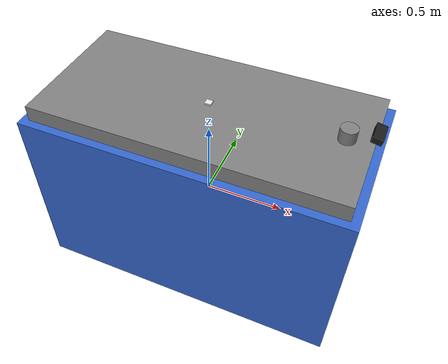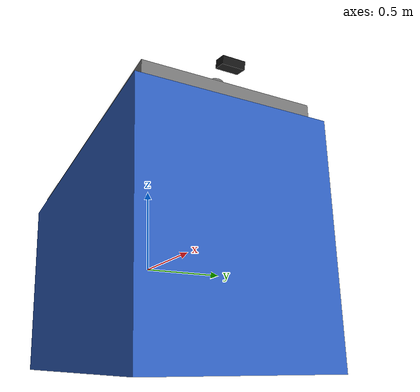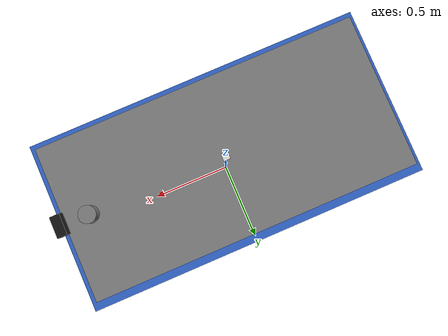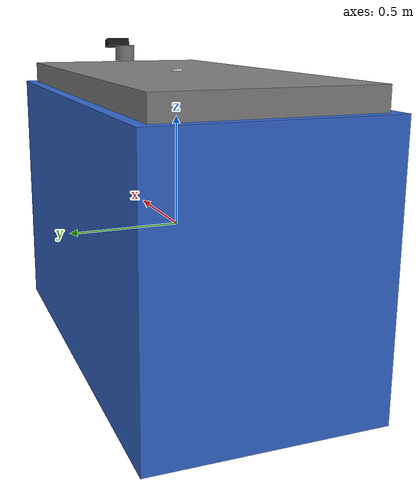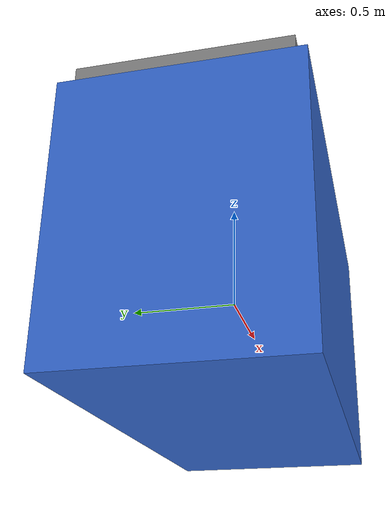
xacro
<?xml version="1.0"?>
<robot name="agv_robot" xmlns:xacro="http://www.ros.org/wiki/xacro">

  <!-- Constants -->
  <xacro:property name="vehicle_length" value="2.0"/>
  <xacro:property name="vehicle_width" value="1.0"/>
  <xacro:property name="vehicle_height" value="1.2"/>
  <xacro:property name="wheel_radius" value="0.25"/>
  <xacro:property name="wheel_width" value="0.15"/>
  <xacro:property name="wheelbase" value="1.2"/>
  <xacro:property name="track_width" value="0.8"/>
  <xacro:property name="M_PI" value="3.14159265358979"/>

  <!-- Materials -->
  <material name="blue">
    <color rgba="0.2 0.4 0.8 1.0"/>
  </material>
  <material name="grey">
    <color rgba="0.5 0.5 0.5 1.0"/>
  </material>
  <material name="black">
    <color rgba="0.1 0.1 0.1 1.0"/>
  </material>
  <material name="white">
    <color rgba="0.9 0.9 0.9 1.0"/>
  </material>

  <!-- Base Link -->
  <link name="base_link">
    <visual>
      <geometry>
        <box size="${vehicle_length} ${vehicle_width} ${vehicle_height}"/>
      </geometry>
      <material name="blue"/>
    </visual>
    <collision>
      <geometry>
        <box size="${vehicle_length} ${vehicle_width} ${vehicle_height}"/>
      </geometry>
    </collision>
    <inertial>
      <mass value="200.0"/>
      <origin xyz="0 0 0"/>
      <inertia ixx="50.0" iyy="100.0" izz="80.0" ixy="0" ixz="0" iyz="0"/>
    </inertial>
  </link>

  <!-- Chassis joint -->
  <joint name="base_to_chassis" type="fixed">
    <parent link="base_link"/>
    <child link="chassis"/>
    <origin xyz="0 0 ${vehicle_height/2 + 0.05}"/>
  </joint>
  <link name="chassis">
    <visual>
      <geometry><box size="${vehicle_length-0.1} ${vehicle_width-0.1} 0.1"/></geometry>
      <material name="grey"/>
    </visual>
    <collision>
      <geometry><box size="${vehicle_length-0.1} ${vehicle_width-0.1} 0.1"/></geometry>
    </collision>
    <inertial>
      <mass value="10.0"/>
      <inertia ixx="1.0" iyy="1.0" izz="1.0" ixy="0" ixz="0" iyz="0"/>
    </inertial>
  </link>

  <!-- Wheel Macro -->
  <xacro:macro name="wheel" params="name x y">
    <link name="${name}">
      <visual>
        <geometry>
          <cylinder radius="${wheel_radius}" length="${wheel_width}"/>
        </geometry>
        <material name="black"/>
      </visual>
      <collision>
        <geometry>
          <cylinder radius="${wheel_radius}" length="${wheel_width}"/>
        </geometry>
      </collision>
      <inertial>
        <mass value="5.0"/>
        <inertia ixx="0.1" iyy="0.1" izz="0.1" ixy="0" ixz="0" iyz="0"/>
      </inertial>
    </link>
    <joint name="${name}_joint" type="continuous">
      <parent link="base_link"/>
      <child link="${name}"/>
      <origin xyz="${x} ${y} ${-vehicle_height/2 + wheel_radius}" rpy="${M_PI/2} 0 0"/>
      <axis xyz="0 0 1"/>
    </joint>
  </xacro:macro>

  <xacro:wheel name="front_left_wheel"  x="${wheelbase/2}"  y="${track_width/2}"/>
  <xacro:wheel name="front_right_wheel" x="${wheelbase/2}"  y="${-track_width/2}"/>
  <xacro:wheel name="rear_left_wheel"   x="${-wheelbase/2}" y="${track_width/2}"/>
  <xacro:wheel name="rear_right_wheel"  x="${-wheelbase/2}" y="${-track_width/2}"/>

  <!-- LiDAR (VLP-16 style) -->
  <joint name="lidar_joint" type="fixed">
    <parent link="base_link"/>
    <child link="lidar_link"/>
    <origin xyz="0.8 0 ${vehicle_height/2 + 0.15}" rpy="0 0 0"/>
  </joint>
  <link name="lidar_link">
    <visual>
      <geometry><cylinder radius="0.05" length="0.08"/></geometry>
      <material name="grey"/>
    </visual>
    <collision>
      <geometry><cylinder radius="0.05" length="0.08"/></geometry>
    </collision>
    <inertial>
      <mass value="0.83"/>
      <inertia ixx="0.001" iyy="0.001" izz="0.001" ixy="0" ixz="0" iyz="0"/>
    </inertial>
  </link>

  <!-- Camera -->
  <joint name="camera_joint" type="fixed">
    <parent link="base_link"/>
    <child link="camera_link"/>
    <origin xyz="${vehicle_length/2 - 0.05} 0 ${vehicle_height/2 + 0.2}" rpy="0 0.2 0"/>
  </joint>
  <link name="camera_link">
    <visual>
      <geometry><box size="0.06 0.12 0.04"/></geometry>
      <material name="black"/>
    </visual>
    <inertial>
      <mass value="0.15"/>
      <inertia ixx="0.0001" iyy="0.0001" izz="0.0001" ixy="0" ixz="0" iyz="0"/>
    </inertial>
  </link>

  <!-- IMU -->
  <joint name="imu_joint" type="fixed">
    <parent link="base_link"/>
    <child link="imu_link"/>
    <origin xyz="0 0 0.05" rpy="0 0 0"/>
  </joint>
  <link name="imu_link">
    <visual>
      <geometry><box size="0.05 0.05 0.02"/></geometry>
      <material name="white"/>
    </visual>
    <inertial>
      <mass value="0.05"/>
      <inertia ixx="0.00001" iyy="0.00001" izz="0.00001" ixy="0" ixz="0" iyz="0"/>
    </inertial>
  </link>

  <!-- GPS -->
  <joint name="gps_joint" type="fixed">
    <parent link="base_link"/>
    <child link="gps_link"/>
    <origin xyz="0 0 ${vehicle_height/2 + 0.1}" rpy="0 0 0"/>
  </joint>
  <link name="gps_link">
    <visual>
      <geometry><box size="0.04 0.04 0.02"/></geometry>
      <material name="white"/>
    </visual>
    <inertial>
      <mass value="0.05"/>
      <inertia ixx="0.00001" iyy="0.00001" izz="0.00001" ixy="0" ixz="0" iyz="0"/>
    </inertial>
  </link>

  <!-- Gazebo plugins -->
  <gazebo reference="lidar_link">
    <sensor type="ray" name="velodyne_sensor">
      <pose>0 0 0 0 0 0</pose>
      <visualize>false</visualize>
      <update_rate>10</update_rate>
      <ray>
        <scan>
          <horizontal>
            <samples>360</samples>
            <resolution>1</resolution>
            <min_angle>-3.14159</min_angle>
            <max_angle>3.14159</max_angle>
          </horizontal>
          <vertical>
            <samples>16</samples>
            <resolution>1</resolution>
            <min_angle>-0.2618</min_angle>
            <max_angle>0.2618</max_angle>
          </vertical>
        </scan>
        <range>
          <min>0.3</min>
          <max>100.0</max>
          <resolution>0.001</resolution>
        </range>
        <noise>
          <type>gaussian</type>
          <mean>0.0</mean>
          <stddev>0.01</stddev>
        </noise>
      </ray>
      <plugin name="gazebo_ros_velodyne_laser" filename="libgazebo_ros_velodyne_laser.so">
        <ros>
          <remapping>~/out:=/velodyne_points</remapping>
        </ros>
        <output_type>sensor_msgs/PointCloud2</output_type>
        <frame_name>lidar_link</frame_name>
        <min_intensity>0.0</min_intensity>
      </plugin>
    </sensor>
  </gazebo>

  <gazebo reference="camera_link">
    <sensor type="camera" name="front_camera">
      <update_rate>30</update_rate>
      <camera name="front">
        <horizontal_fov>1.3962634</horizontal_fov>
        <image>
          <width>1280</width>
          <height>720</height>
          <format>R8G8B8</format>
        </image>
        <clip>
          <near>0.1</near>
          <far>100</far>
        </clip>
        <noise>
          <type>gaussian</type>
          <mean>0.0</mean>
          <stddev>0.007</stddev>
        </noise>
      </camera>
      <plugin name="camera_controller" filename="libgazebo_ros_camera.so">
        <ros>
          <remapping>image_raw:=/camera/image_raw</remapping>
        </ros>
        <frame_name>camera_link</frame_name>
      </plugin>
    </sensor>
  </gazebo>

  <gazebo reference="imu_link">
    <sensor name="imu_sensor" type="imu">
      <always_on>true</always_on>
      <update_rate>100</update_rate>
      <plugin filename="libgazebo_ros_imu_sensor.so" name="imu_plugin">
        <ros>
          <remapping>~/out:=/imu/data</remapping>
        </ros>
        <initial_orientation_as_reference>false</initial_orientation_as_reference>
      </plugin>
    </sensor>
  </gazebo>

  <gazebo reference="gps_link">
    <sensor name="gps_sensor" type="gps">
      <always_on>true</always_on>
      <update_rate>5</update_rate>
      <plugin name="gps_plugin" filename="libgazebo_ros_gps_sensor.so">
        <ros>
          <remapping>~/out:=/fix</remapping>
        </ros>
        <frame_name>gps_link</frame_name>
      </plugin>
    </sensor>
  </gazebo>

  <gazebo>
    <plugin name="differential_drive_controller" filename="libgazebo_ros_diff_drive.so">
      <ros>
        <remapping>cmd_vel:=/agv/cmd_vel</remapping>
        <remapping>odom:=/agv/gazebo_odom</remapping>
      </ros>
      <left_joint>rear_left_wheel_joint</left_joint>
      <right_joint>rear_right_wheel_joint</right_joint>
      <wheel_separation>${track_width}</wheel_separation>
      <wheel_diameter>${wheel_radius * 2}</wheel_diameter>
      <max_wheel_torque>20</max_wheel_torque>
      <max_wheel_acceleration>5.0</max_wheel_acceleration>
      <publish_odom>true</publish_odom>
      <publish_odom_tf>true</publish_odom_tf>
      <publish_wheel_tf>true</publish_wheel_tf>
      <odometry_frame>odom</odometry_frame>
      <robot_base_frame>base_link</robot_base_frame>
    </plugin>
  </gazebo>

</robot>
